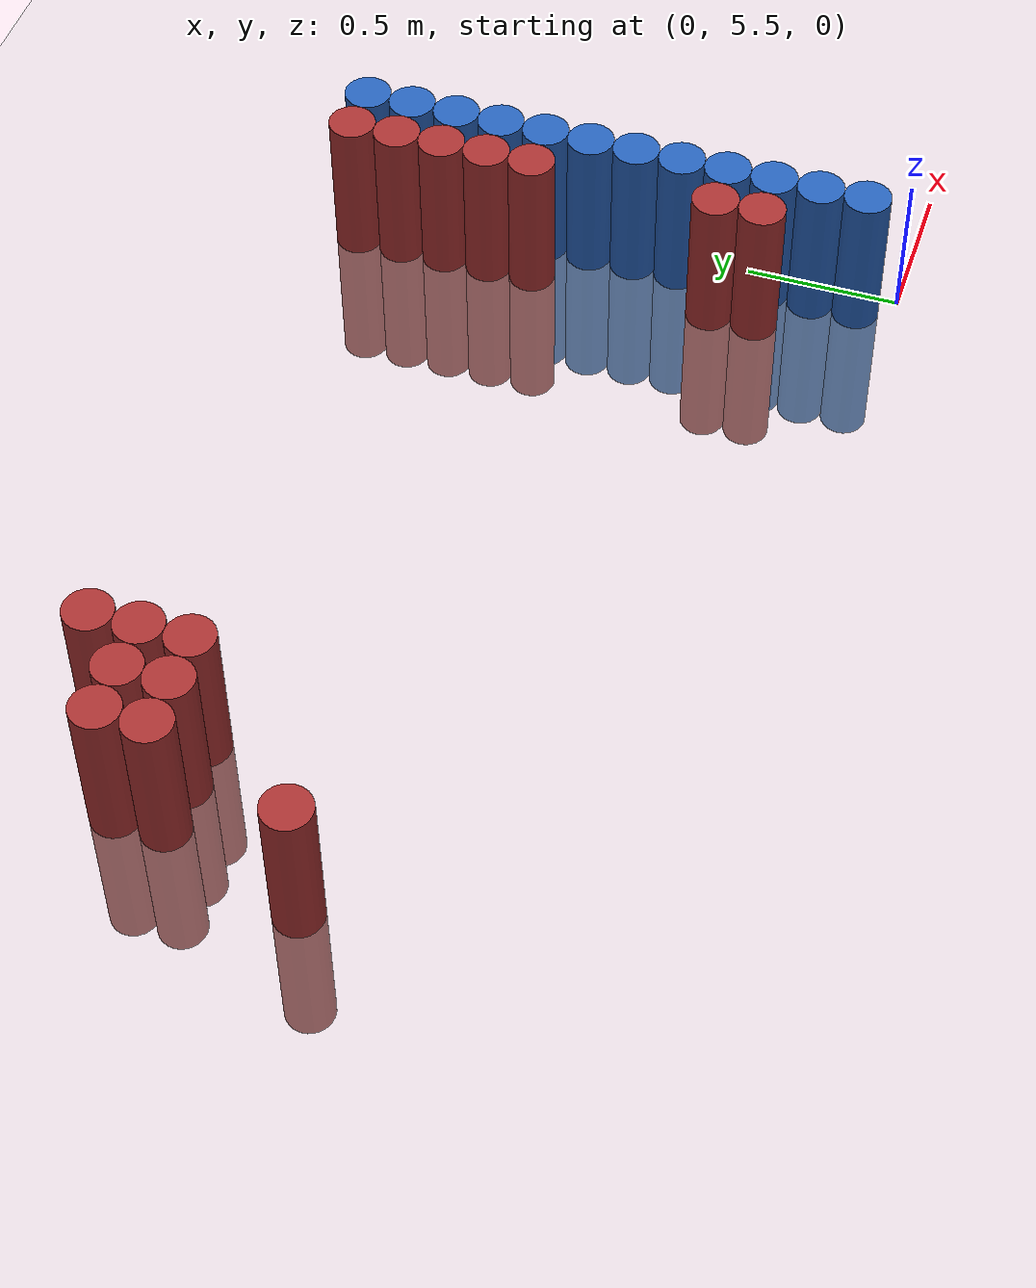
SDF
<sdf version="1.6">
 <world name="default">
  <model name="ground_plane">
   <static>1</static>
   <link name="link">
    <collision name="collision">
     <geometry><plane><normal>0 0 1</normal><size>100 100</size></plane></geometry>
     <surface><friction><ode><mu>100</mu><mu2>50</mu2></ode></friction></surface>
    </collision>
    <visual name="visual">
     <cast_shadows>0</cast_shadows>
     <geometry><plane><normal>0 0 1</normal><size>100 100</size></plane></geometry>
     <material>
      <script><uri>file://media/materials/scripts/gazebo.material</uri><name>Gazebo/Grey</name></script>
     </material>
    </visual>
   </link>
  </model>
  <model name="unit_cylinder_155">
   <static>1</static>
   <pose>-2.775000 6.525000 0.000000 0.000000 0.000000 0.000000</pose>
   <link name="link">
    <inertial>
     <mass>1</mass>
     <inertia><ixx>0.145833</ixx><ixy>0</ixy><ixz>0</ixz><iyy>0.145833</iyy><iyz>0</iyz><izz>0.125</izz></inertia>
    </inertial>
    <collision name="collision">
     <geometry><cylinder><radius>0.075000</radius><length>1</length></cylinder></geometry>
    </collision>
    <visual name="visual">
     <geometry><cylinder><radius>0.075000</radius><length>1</length></cylinder></geometry>
     <material>
      <ambient>0.648000 0.192000 0.192000 1</ambient>
      <diffuse>0.648000 0.192000 0.192000 1</diffuse>
     </material>
     <material>
      <script><name>Gazebo/Grey</name><uri>file://media/materials/scripts/gazebo.material</uri></script>
     </material>
    </visual>
   </link>
  </model>
  <model name="unit_cylinder_156">
   <static>1</static>
   <pose>-2.625000 6.975000 0.000000 0.000000 0.000000 0.000000</pose>
   <link name="link">
    <inertial>
     <mass>1</mass>
     <inertia><ixx>0.145833</ixx><ixy>0</ixy><ixz>0</ixz><iyy>0.145833</iyy><iyz>0</iyz><izz>0.125</izz></inertia>
    </inertial>
    <collision name="collision">
     <geometry><cylinder><radius>0.075000</radius><length>1</length></cylinder></geometry>
    </collision>
    <visual name="visual">
     <geometry><cylinder><radius>0.075000</radius><length>1</length></cylinder></geometry>
     <material>
      <ambient>0.648000 0.192000 0.192000 1</ambient>
      <diffuse>0.648000 0.192000 0.192000 1</diffuse>
     </material>
     <material>
      <script><name>Gazebo/Grey</name><uri>file://media/materials/scripts/gazebo.material</uri></script>
     </material>
    </visual>
   </link>
  </model>
  <model name="unit_cylinder_157">
   <static>1</static>
   <pose>-2.625000 7.125000 0.000000 0.000000 0.000000 0.000000</pose>
   <link name="link">
    <inertial>
     <mass>1</mass>
     <inertia><ixx>0.145833</ixx><ixy>0</ixy><ixz>0</ixz><iyy>0.145833</iyy><iyz>0</iyz><izz>0.125</izz></inertia>
    </inertial>
    <collision name="collision">
     <geometry><cylinder><radius>0.075000</radius><length>1</length></cylinder></geometry>
    </collision>
    <visual name="visual">
     <geometry><cylinder><radius>0.075000</radius><length>1</length></cylinder></geometry>
     <material>
      <ambient>0.648000 0.192000 0.192000 1</ambient>
      <diffuse>0.648000 0.192000 0.192000 1</diffuse>
     </material>
     <material>
      <script><name>Gazebo/Grey</name><uri>file://media/materials/scripts/gazebo.material</uri></script>
     </material>
    </visual>
   </link>
  </model>
  <model name="unit_cylinder_159">
   <static>1</static>
   <pose>-2.475000 6.975000 0.000000 0.000000 0.000000 0.000000</pose>
   <link name="link">
    <inertial>
     <mass>1</mass>
     <inertia><ixx>0.145833</ixx><ixy>0</ixy><ixz>0</ixz><iyy>0.145833</iyy><iyz>0</iyz><izz>0.125</izz></inertia>
    </inertial>
    <collision name="collision">
     <geometry><cylinder><radius>0.075000</radius><length>1</length></cylinder></geometry>
    </collision>
    <visual name="visual">
     <geometry><cylinder><radius>0.075000</radius><length>1</length></cylinder></geometry>
     <material>
      <ambient>0.648000 0.192000 0.192000 1</ambient>
      <diffuse>0.648000 0.192000 0.192000 1</diffuse>
     </material>
     <material>
      <script><name>Gazebo/Grey</name><uri>file://media/materials/scripts/gazebo.material</uri></script>
     </material>
    </visual>
   </link>
  </model>
  <model name="unit_cylinder_160">
   <static>1</static>
   <pose>-2.475000 7.125000 0.000000 0.000000 0.000000 0.000000</pose>
   <link name="link">
    <inertial>
     <mass>1</mass>
     <inertia><ixx>0.145833</ixx><ixy>0</ixy><ixz>0</ixz><iyy>0.145833</iyy><iyz>0</iyz><izz>0.125</izz></inertia>
    </inertial>
    <collision name="collision">
     <geometry><cylinder><radius>0.075000</radius><length>1</length></cylinder></geometry>
    </collision>
    <visual name="visual">
     <geometry><cylinder><radius>0.075000</radius><length>1</length></cylinder></geometry>
     <material>
      <ambient>0.648000 0.192000 0.192000 1</ambient>
      <diffuse>0.648000 0.192000 0.192000 1</diffuse>
     </material>
     <material>
      <script><name>Gazebo/Grey</name><uri>file://media/materials/scripts/gazebo.material</uri></script>
     </material>
    </visual>
   </link>
  </model>
  <model name="unit_cylinder_163">
   <static>1</static>
   <pose>-2.325000 6.975000 0.000000 0.000000 0.000000 0.000000</pose>
   <link name="link">
    <inertial>
     <mass>1</mass>
     <inertia><ixx>0.145833</ixx><ixy>0</ixy><ixz>0</ixz><iyy>0.145833</iyy><iyz>0</iyz><izz>0.125</izz></inertia>
    </inertial>
    <collision name="collision">
     <geometry><cylinder><radius>0.075000</radius><length>1</length></cylinder></geometry>
    </collision>
    <visual name="visual">
     <geometry><cylinder><radius>0.075000</radius><length>1</length></cylinder></geometry>
     <material>
      <ambient>0.648000 0.192000 0.192000 1</ambient>
      <diffuse>0.648000 0.192000 0.192000 1</diffuse>
     </material>
     <material>
      <script><name>Gazebo/Grey</name><uri>file://media/materials/scripts/gazebo.material</uri></script>
     </material>
    </visual>
   </link>
  </model>
  <model name="unit_cylinder_164">
   <static>1</static>
   <pose>-2.325000 7.125000 0.000000 0.000000 0.000000 0.000000</pose>
   <link name="link">
    <inertial>
     <mass>1</mass>
     <inertia><ixx>0.145833</ixx><ixy>0</ixy><ixz>0</ixz><iyy>0.145833</iyy><iyz>0</iyz><izz>0.125</izz></inertia>
    </inertial>
    <collision name="collision">
     <geometry><cylinder><radius>0.075000</radius><length>1</length></cylinder></geometry>
    </collision>
    <visual name="visual">
     <geometry><cylinder><radius>0.075000</radius><length>1</length></cylinder></geometry>
     <material>
      <ambient>0.648000 0.192000 0.192000 1</ambient>
      <diffuse>0.648000 0.192000 0.192000 1</diffuse>
     </material>
     <material>
      <script><name>Gazebo/Grey</name><uri>file://media/materials/scripts/gazebo.material</uri></script>
     </material>
    </visual>
   </link>
  </model>
  <model name="unit_cylinder_165">
   <static>1</static>
   <pose>-2.325000 7.275000 0.000000 0.000000 0.000000 0.000000</pose>
   <link name="link">
    <inertial>
     <mass>1</mass>
     <inertia><ixx>0.145833</ixx><ixy>0</ixy><ixz>0</ixz><iyy>0.145833</iyy><iyz>0</iyz><izz>0.125</izz></inertia>
    </inertial>
    <collision name="collision">
     <geometry><cylinder><radius>0.075000</radius><length>1</length></cylinder></geometry>
    </collision>
    <visual name="visual">
     <geometry><cylinder><radius>0.075000</radius><length>1</length></cylinder></geometry>
     <material>
      <ambient>0.648000 0.192000 0.192000 1</ambient>
      <diffuse>0.648000 0.192000 0.192000 1</diffuse>
     </material>
     <material>
      <script><name>Gazebo/Grey</name><uri>file://media/materials/scripts/gazebo.material</uri></script>
     </material>
    </visual>
   </link>
  </model>
  <model name="unit_cylinder_173">
   <static>1</static>
   <pose>-0.225000 5.925000 0.000000 0.000000 0.000000 0.000000</pose>
   <link name="link">
    <inertial>
     <mass>1</mass>
     <inertia><ixx>0.145833</ixx><ixy>0</ixy><ixz>0</ixz><iyy>0.145833</iyy><iyz>0</iyz><izz>0.125</izz></inertia>
    </inertial>
    <collision name="collision">
     <geometry><cylinder><radius>0.075000</radius><length>1</length></cylinder></geometry>
    </collision>
    <visual name="visual">
     <geometry><cylinder><radius>0.075000</radius><length>1</length></cylinder></geometry>
     <material>
      <ambient>0.648000 0.192000 0.192000 1</ambient>
      <diffuse>0.648000 0.192000 0.192000 1</diffuse>
     </material>
     <material>
      <script><name>Gazebo/Grey</name><uri>file://media/materials/scripts/gazebo.material</uri></script>
     </material>
    </visual>
   </link>
  </model>
  <model name="unit_cylinder_174">
   <static>1</static>
   <pose>-0.225000 6.075000 0.000000 0.000000 0.000000 0.000000</pose>
   <link name="link">
    <inertial>
     <mass>1</mass>
     <inertia><ixx>0.145833</ixx><ixy>0</ixy><ixz>0</ixz><iyy>0.145833</iyy><iyz>0</iyz><izz>0.125</izz></inertia>
    </inertial>
    <collision name="collision">
     <geometry><cylinder><radius>0.075000</radius><length>1</length></cylinder></geometry>
    </collision>
    <visual name="visual">
     <geometry><cylinder><radius>0.075000</radius><length>1</length></cylinder></geometry>
     <material>
      <ambient>0.648000 0.192000 0.192000 1</ambient>
      <diffuse>0.648000 0.192000 0.192000 1</diffuse>
     </material>
     <material>
      <script><name>Gazebo/Grey</name><uri>file://media/materials/scripts/gazebo.material</uri></script>
     </material>
    </visual>
   </link>
  </model>
  <model name="unit_cylinder_175">
   <static>1</static>
   <pose>-0.225000 6.675000 0.000000 0.000000 0.000000 0.000000</pose>
   <link name="link">
    <inertial>
     <mass>1</mass>
     <inertia><ixx>0.145833</ixx><ixy>0</ixy><ixz>0</ixz><iyy>0.145833</iyy><iyz>0</iyz><izz>0.125</izz></inertia>
    </inertial>
    <collision name="collision">
     <geometry><cylinder><radius>0.075000</radius><length>1</length></cylinder></geometry>
    </collision>
    <visual name="visual">
     <geometry><cylinder><radius>0.075000</radius><length>1</length></cylinder></geometry>
     <material>
      <ambient>0.648000 0.192000 0.192000 1</ambient>
      <diffuse>0.648000 0.192000 0.192000 1</diffuse>
     </material>
     <material>
      <script><name>Gazebo/Grey</name><uri>file://media/materials/scripts/gazebo.material</uri></script>
     </material>
    </visual>
   </link>
  </model>
  <model name="unit_cylinder_176">
   <static>1</static>
   <pose>-0.225000 6.825000 0.000000 0.000000 0.000000 0.000000</pose>
   <link name="link">
    <inertial>
     <mass>1</mass>
     <inertia><ixx>0.145833</ixx><ixy>0</ixy><ixz>0</ixz><iyy>0.145833</iyy><iyz>0</iyz><izz>0.125</izz></inertia>
    </inertial>
    <collision name="collision">
     <geometry><cylinder><radius>0.075000</radius><length>1</length></cylinder></geometry>
    </collision>
    <visual name="visual">
     <geometry><cylinder><radius>0.075000</radius><length>1</length></cylinder></geometry>
     <material>
      <ambient>0.648000 0.192000 0.192000 1</ambient>
      <diffuse>0.648000 0.192000 0.192000 1</diffuse>
     </material>
     <material>
      <script><name>Gazebo/Grey</name><uri>file://media/materials/scripts/gazebo.material</uri></script>
     </material>
    </visual>
   </link>
  </model>
  <model name="unit_cylinder_177">
   <static>1</static>
   <pose>-0.225000 6.975000 0.000000 0.000000 0.000000 0.000000</pose>
   <link name="link">
    <inertial>
     <mass>1</mass>
     <inertia><ixx>0.145833</ixx><ixy>0</ixy><ixz>0</ixz><iyy>0.145833</iyy><iyz>0</iyz><izz>0.125</izz></inertia>
    </inertial>
    <collision name="collision">
     <geometry><cylinder><radius>0.075000</radius><length>1</length></cylinder></geometry>
    </collision>
    <visual name="visual">
     <geometry><cylinder><radius>0.075000</radius><length>1</length></cylinder></geometry>
     <material>
      <ambient>0.648000 0.192000 0.192000 1</ambient>
      <diffuse>0.648000 0.192000 0.192000 1</diffuse>
     </material>
     <material>
      <script><name>Gazebo/Grey</name><uri>file://media/materials/scripts/gazebo.material</uri></script>
     </material>
    </visual>
   </link>
  </model>
  <model name="unit_cylinder_178">
   <static>1</static>
   <pose>-0.225000 7.125000 0.000000 0.000000 0.000000 0.000000</pose>
   <link name="link">
    <inertial>
     <mass>1</mass>
     <inertia><ixx>0.145833</ixx><ixy>0</ixy><ixz>0</ixz><iyy>0.145833</iyy><iyz>0</iyz><izz>0.125</izz></inertia>
    </inertial>
    <collision name="collision">
     <geometry><cylinder><radius>0.075000</radius><length>1</length></cylinder></geometry>
    </collision>
    <visual name="visual">
     <geometry><cylinder><radius>0.075000</radius><length>1</length></cylinder></geometry>
     <material>
      <ambient>0.648000 0.192000 0.192000 1</ambient>
      <diffuse>0.648000 0.192000 0.192000 1</diffuse>
     </material>
     <material>
      <script><name>Gazebo/Grey</name><uri>file://media/materials/scripts/gazebo.material</uri></script>
     </material>
    </visual>
   </link>
  </model>
  <model name="unit_cylinder_179">
   <static>1</static>
   <pose>-0.225000 7.275000 0.000000 0.000000 0.000000 0.000000</pose>
   <link name="link">
    <inertial>
     <mass>1</mass>
     <inertia><ixx>0.145833</ixx><ixy>0</ixy><ixz>0</ixz><iyy>0.145833</iyy><iyz>0</iyz><izz>0.125</izz></inertia>
    </inertial>
    <collision name="collision">
     <geometry><cylinder><radius>0.075000</radius><length>1</length></cylinder></geometry>
    </collision>
    <visual name="visual">
     <geometry><cylinder><radius>0.075000</radius><length>1</length></cylinder></geometry>
     <material>
      <ambient>0.648000 0.192000 0.192000 1</ambient>
      <diffuse>0.648000 0.192000 0.192000 1</diffuse>
     </material>
     <material>
      <script><name>Gazebo/Grey</name><uri>file://media/materials/scripts/gazebo.material</uri></script>
     </material>
    </visual>
   </link>
  </model>
  <model name="unit_cylinder_185">
   <static>1</static>
   <pose>-0.075000 5.625000 0.000000 0.000000 0.000000 0.000000</pose>
   <link name="link">
    <inertial>
     <mass>1</mass>
     <inertia><ixx>0.145833</ixx><ixy>0</ixy><ixz>0</ixz><iyy>0.145833</iyy><iyz>0</iyz><izz>0.125</izz></inertia>
    </inertial>
    <collision name="collision">
     <geometry><cylinder><radius>0.075000</radius><length>1</length></cylinder></geometry>
    </collision>
    <visual name="visual">
     <geometry><cylinder><radius>0.075000</radius><length>1</length></cylinder></geometry>
     <material>
      <ambient>0.152000 0.379000 0.720000 1</ambient>
      <diffuse>0.152000 0.379000 0.720000 1</diffuse>
     </material>
     <material>
      <script><name>Gazebo/Grey</name><uri>file://media/materials/scripts/gazebo.material</uri></script>
     </material>
    </visual>
   </link>
  </model>
  <model name="unit_cylinder_186">
   <static>1</static>
   <pose>-0.075000 5.775000 0.000000 0.000000 0.000000 0.000000</pose>
   <link name="link">
    <inertial>
     <mass>1</mass>
     <inertia><ixx>0.145833</ixx><ixy>0</ixy><ixz>0</ixz><iyy>0.145833</iyy><iyz>0</iyz><izz>0.125</izz></inertia>
    </inertial>
    <collision name="collision">
     <geometry><cylinder><radius>0.075000</radius><length>1</length></cylinder></geometry>
    </collision>
    <visual name="visual">
     <geometry><cylinder><radius>0.075000</radius><length>1</length></cylinder></geometry>
     <material>
      <ambient>0.152000 0.379000 0.720000 1</ambient>
      <diffuse>0.152000 0.379000 0.720000 1</diffuse>
     </material>
     <material>
      <script><name>Gazebo/Grey</name><uri>file://media/materials/scripts/gazebo.material</uri></script>
     </material>
    </visual>
   </link>
  </model>
  <model name="unit_cylinder_187">
   <static>1</static>
   <pose>-0.075000 5.925000 0.000000 0.000000 0.000000 0.000000</pose>
   <link name="link">
    <inertial>
     <mass>1</mass>
     <inertia><ixx>0.145833</ixx><ixy>0</ixy><ixz>0</ixz><iyy>0.145833</iyy><iyz>0</iyz><izz>0.125</izz></inertia>
    </inertial>
    <collision name="collision">
     <geometry><cylinder><radius>0.075000</radius><length>1</length></cylinder></geometry>
    </collision>
    <visual name="visual">
     <geometry><cylinder><radius>0.075000</radius><length>1</length></cylinder></geometry>
     <material>
      <ambient>0.152000 0.379000 0.720000 1</ambient>
      <diffuse>0.152000 0.379000 0.720000 1</diffuse>
     </material>
     <material>
      <script><name>Gazebo/Grey</name><uri>file://media/materials/scripts/gazebo.material</uri></script>
     </material>
    </visual>
   </link>
  </model>
  <model name="unit_cylinder_188">
   <static>1</static>
   <pose>-0.075000 6.075000 0.000000 0.000000 0.000000 0.000000</pose>
   <link name="link">
    <inertial>
     <mass>1</mass>
     <inertia><ixx>0.145833</ixx><ixy>0</ixy><ixz>0</ixz><iyy>0.145833</iyy><iyz>0</iyz><izz>0.125</izz></inertia>
    </inertial>
    <collision name="collision">
     <geometry><cylinder><radius>0.075000</radius><length>1</length></cylinder></geometry>
    </collision>
    <visual name="visual">
     <geometry><cylinder><radius>0.075000</radius><length>1</length></cylinder></geometry>
     <material>
      <ambient>0.152000 0.379000 0.720000 1</ambient>
      <diffuse>0.152000 0.379000 0.720000 1</diffuse>
     </material>
     <material>
      <script><name>Gazebo/Grey</name><uri>file://media/materials/scripts/gazebo.material</uri></script>
     </material>
    </visual>
   </link>
  </model>
  <model name="unit_cylinder_189">
   <static>1</static>
   <pose>-0.075000 6.225000 0.000000 0.000000 0.000000 0.000000</pose>
   <link name="link">
    <inertial>
     <mass>1</mass>
     <inertia><ixx>0.145833</ixx><ixy>0</ixy><ixz>0</ixz><iyy>0.145833</iyy><iyz>0</iyz><izz>0.125</izz></inertia>
    </inertial>
    <collision name="collision">
     <geometry><cylinder><radius>0.075000</radius><length>1</length></cylinder></geometry>
    </collision>
    <visual name="visual">
     <geometry><cylinder><radius>0.075000</radius><length>1</length></cylinder></geometry>
     <material>
      <ambient>0.152000 0.379000 0.720000 1</ambient>
      <diffuse>0.152000 0.379000 0.720000 1</diffuse>
     </material>
     <material>
      <script><name>Gazebo/Grey</name><uri>file://media/materials/scripts/gazebo.material</uri></script>
     </material>
    </visual>
   </link>
  </model>
  <model name="unit_cylinder_190">
   <static>1</static>
   <pose>-0.075000 6.375000 0.000000 0.000000 0.000000 0.000000</pose>
   <link name="link">
    <inertial>
     <mass>1</mass>
     <inertia><ixx>0.145833</ixx><ixy>0</ixy><ixz>0</ixz><iyy>0.145833</iyy><iyz>0</iyz><izz>0.125</izz></inertia>
    </inertial>
    <collision name="collision">
     <geometry><cylinder><radius>0.075000</radius><length>1</length></cylinder></geometry>
    </collision>
    <visual name="visual">
     <geometry><cylinder><radius>0.075000</radius><length>1</length></cylinder></geometry>
     <material>
      <ambient>0.152000 0.379000 0.720000 1</ambient>
      <diffuse>0.152000 0.379000 0.720000 1</diffuse>
     </material>
     <material>
      <script><name>Gazebo/Grey</name><uri>file://media/materials/scripts/gazebo.material</uri></script>
     </material>
    </visual>
   </link>
  </model>
  <model name="unit_cylinder_191">
   <static>1</static>
   <pose>-0.075000 6.525000 0.000000 0.000000 0.000000 0.000000</pose>
   <link name="link">
    <inertial>
     <mass>1</mass>
     <inertia><ixx>0.145833</ixx><ixy>0</ixy><ixz>0</ixz><iyy>0.145833</iyy><iyz>0</iyz><izz>0.125</izz></inertia>
    </inertial>
    <collision name="collision">
     <geometry><cylinder><radius>0.075000</radius><length>1</length></cylinder></geometry>
    </collision>
    <visual name="visual">
     <geometry><cylinder><radius>0.075000</radius><length>1</length></cylinder></geometry>
     <material>
      <ambient>0.152000 0.379000 0.720000 1</ambient>
      <diffuse>0.152000 0.379000 0.720000 1</diffuse>
     </material>
     <material>
      <script><name>Gazebo/Grey</name><uri>file://media/materials/scripts/gazebo.material</uri></script>
     </material>
    </visual>
   </link>
  </model>
  <model name="unit_cylinder_192">
   <static>1</static>
   <pose>-0.075000 6.675000 0.000000 0.000000 0.000000 0.000000</pose>
   <link name="link">
    <inertial>
     <mass>1</mass>
     <inertia><ixx>0.145833</ixx><ixy>0</ixy><ixz>0</ixz><iyy>0.145833</iyy><iyz>0</iyz><izz>0.125</izz></inertia>
    </inertial>
    <collision name="collision">
     <geometry><cylinder><radius>0.075000</radius><length>1</length></cylinder></geometry>
    </collision>
    <visual name="visual">
     <geometry><cylinder><radius>0.075000</radius><length>1</length></cylinder></geometry>
     <material>
      <ambient>0.152000 0.379000 0.720000 1</ambient>
      <diffuse>0.152000 0.379000 0.720000 1</diffuse>
     </material>
     <material>
      <script><name>Gazebo/Grey</name><uri>file://media/materials/scripts/gazebo.material</uri></script>
     </material>
    </visual>
   </link>
  </model>
  <model name="unit_cylinder_193">
   <static>1</static>
   <pose>-0.075000 6.825000 0.000000 0.000000 0.000000 0.000000</pose>
   <link name="link">
    <inertial>
     <mass>1</mass>
     <inertia><ixx>0.145833</ixx><ixy>0</ixy><ixz>0</ixz><iyy>0.145833</iyy><iyz>0</iyz><izz>0.125</izz></inertia>
    </inertial>
    <collision name="collision">
     <geometry><cylinder><radius>0.075000</radius><length>1</length></cylinder></geometry>
    </collision>
    <visual name="visual">
     <geometry><cylinder><radius>0.075000</radius><length>1</length></cylinder></geometry>
     <material>
      <ambient>0.152000 0.379000 0.720000 1</ambient>
      <diffuse>0.152000 0.379000 0.720000 1</diffuse>
     </material>
     <material>
      <script><name>Gazebo/Grey</name><uri>file://media/materials/scripts/gazebo.material</uri></script>
     </material>
    </visual>
   </link>
  </model>
  <model name="unit_cylinder_194">
   <static>1</static>
   <pose>-0.075000 6.975000 0.000000 0.000000 0.000000 0.000000</pose>
   <link name="link">
    <inertial>
     <mass>1</mass>
     <inertia><ixx>0.145833</ixx><ixy>0</ixy><ixz>0</ixz><iyy>0.145833</iyy><iyz>0</iyz><izz>0.125</izz></inertia>
    </inertial>
    <collision name="collision">
     <geometry><cylinder><radius>0.075000</radius><length>1</length></cylinder></geometry>
    </collision>
    <visual name="visual">
     <geometry><cylinder><radius>0.075000</radius><length>1</length></cylinder></geometry>
     <material>
      <ambient>0.152000 0.379000 0.720000 1</ambient>
      <diffuse>0.152000 0.379000 0.720000 1</diffuse>
     </material>
     <material>
      <script><name>Gazebo/Grey</name><uri>file://media/materials/scripts/gazebo.material</uri></script>
     </material>
    </visual>
   </link>
  </model>
  <model name="unit_cylinder_195">
   <static>1</static>
   <pose>-0.075000 7.125000 0.000000 0.000000 0.000000 0.000000</pose>
   <link name="link">
    <inertial>
     <mass>1</mass>
     <inertia><ixx>0.145833</ixx><ixy>0</ixy><ixz>0</ixz><iyy>0.145833</iyy><iyz>0</iyz><izz>0.125</izz></inertia>
    </inertial>
    <collision name="collision">
     <geometry><cylinder><radius>0.075000</radius><length>1</length></cylinder></geometry>
    </collision>
    <visual name="visual">
     <geometry><cylinder><radius>0.075000</radius><length>1</length></cylinder></geometry>
     <material>
      <ambient>0.152000 0.379000 0.720000 1</ambient>
      <diffuse>0.152000 0.379000 0.720000 1</diffuse>
     </material>
     <material>
      <script><name>Gazebo/Grey</name><uri>file://media/materials/scripts/gazebo.material</uri></script>
     </material>
    </visual>
   </link>
  </model>
  <model name="unit_cylinder_196">
   <static>1</static>
   <pose>-0.075000 7.275000 0.000000 0.000000 0.000000 0.000000</pose>
   <link name="link">
    <inertial>
     <mass>1</mass>
     <inertia><ixx>0.145833</ixx><ixy>0</ixy><ixz>0</ixz><iyy>0.145833</iyy><iyz>0</iyz><izz>0.125</izz></inertia>
    </inertial>
    <collision name="collision">
     <geometry><cylinder><radius>0.075000</radius><length>1</length></cylinder></geometry>
    </collision>
    <visual name="visual">
     <geometry><cylinder><radius>0.075000</radius><length>1</length></cylinder></geometry>
     <material>
      <ambient>0.152000 0.379000 0.720000 1</ambient>
      <diffuse>0.152000 0.379000 0.720000 1</diffuse>
     </material>
     <material>
      <script><name>Gazebo/Grey</name><uri>file://media/materials/scripts/gazebo.material</uri></script>
     </material>
    </visual>
   </link>
  </model>
 </world>
</sdf>
